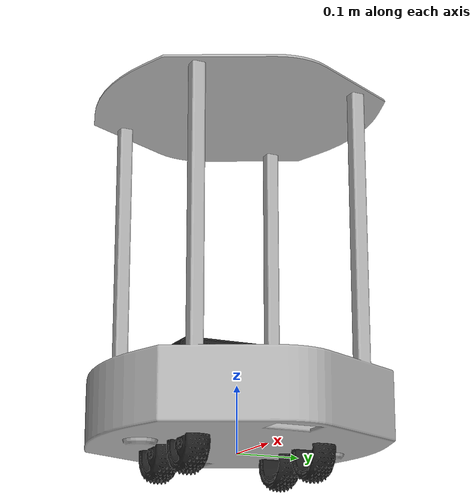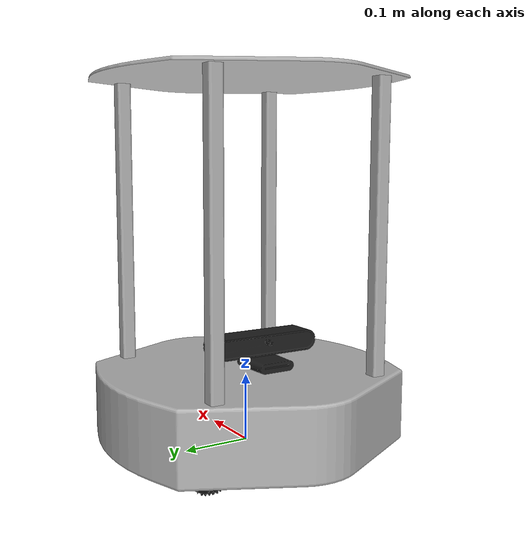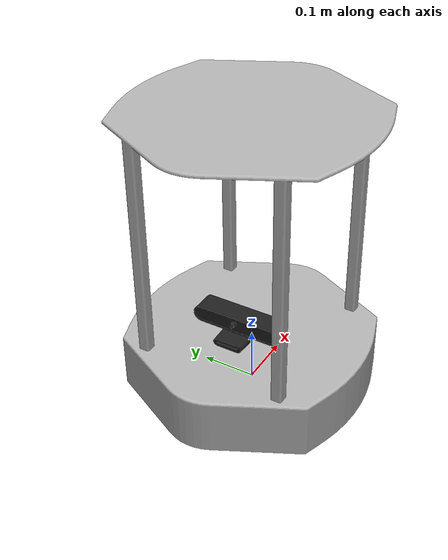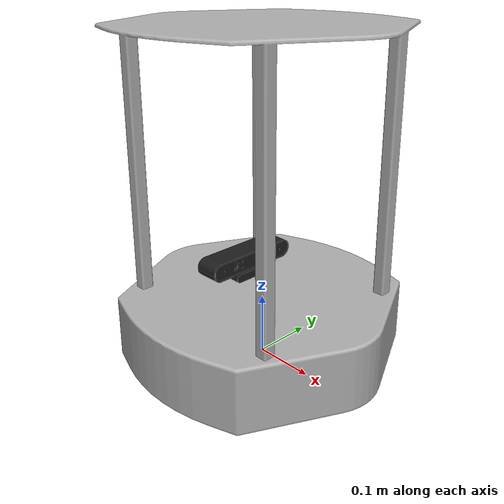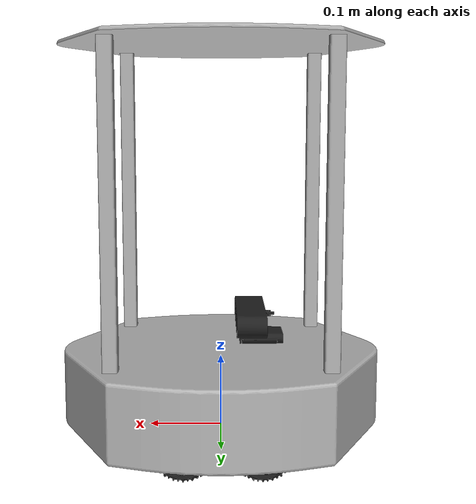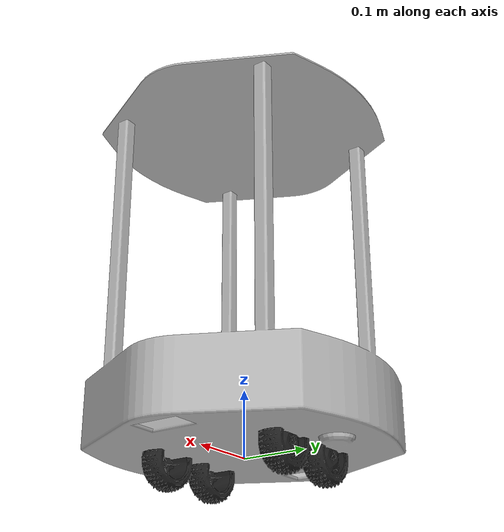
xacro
<?xml version='1.0'?>

<robot name="rosbot"
  xmlns:xacro="http://www.ros.org/wiki/xacro">

  <xacro:arg name="robot_namespace" default=""/>

  <xacro:property name="cameraSize" value="0.05"/>
  <xacro:property name="cameraMass" value="0.1"/>
  <xacro:property name="namespace" value="$(arg robot_namespace)" />

  <xacro:include filename="$(find rosbot_description)/urdf/rosbot.gazebo" />
  <xacro:include filename="$(find rosbot_description)/urdf/materials.xacro" />
  <xacro:include filename="$(find rosbot_description)/urdf/macros.xacro" />

  <link name="dummy"></link>
  <joint name="dummy_joint" type="fixed">
    <parent link="dummy"/>
    <child link="base_link"/>
  </joint>

  <link name="base_link">
    <inertial>
      <origin rpy="0 0 0" xyz="2.360311031961313e-06 3.348856490864264e-10 0.1823972044211784"/>
      <mass value="10.987205181570816"/>
      <inertia ixx="0.580104" ixy="3e-05" ixz="4e-06" iyy="0.584543" iyz="0.0" izz="0.309516"/>
    </inertial>
    <visual>
      <origin rpy="0 0 0" xyz="0 0 0"/>
      <geometry>
        <mesh filename="package://ancro_description/meshes/base_link.stl" scale="0.001 0.001 0.001"/>
      </geometry>
      <material name="silver"/>
    </visual>
    <collision>
      <origin rpy="0 0 0" xyz="0 0 0"/>
      <geometry>
        <mesh filename="package://ancro_description/meshes/base_link.stl" scale="0.001 0.001 0.001"/>
      </geometry>
    </collision>
  </link>

  <link name="front_left_wheel">
    <collision name="collision">
      <origin xyz="0 0 0" rpy="0 0 1.5707"/>
      <geometry>
        <mesh filename="package://rosbot_description/meshes/wheel-v2.stl" scale="0.001 0.001 0.001" />
      </geometry>
      <surface>
        <friction>
          <ode>
            <mu>1</mu>
            <mu2>1</mu2>
          </ode>
        </friction>
      </surface>
    </collision>
    <visual name="front_left_wheel_visual">
      <origin xyz="0 0 0" rpy="0 0 1.5707"/>
      <geometry>
        <mesh filename="package://rosbot_description/meshes/wheel.dae" scale="0.001 0.001 0.001" />
      </geometry>
    </visual>
    <inertial>
      <origin xyz="0 0 0" rpy="0 1.5707 1.5707"/>
      <mass value="0.5"/>
      <inertia
      ixx="0.001" ixy="0.0" ixz="0.0"
      iyy="0.001" iyz="0.0"
      izz="0.001"/>
    </inertial>
  </link>

  <link name="front_right_wheel">
    <collision name="collision">
      <origin xyz="0 0 0" rpy="0 0 -1.5707"/>
      <geometry>
        <mesh filename="package://rosbot_description/meshes/wheel-v2.stl" scale="0.001 0.001 0.001" />
      </geometry>
      <surface>
        <friction>
          <ode>
            <mu>1</mu>
            <mu2>1</mu2>
          </ode>
        </friction>
      </surface>
    </collision>
    <visual name="front_right_wheel_visual">
      <origin xyz="0 0 0" rpy="0 0 -1.5707"/>
      <geometry>
        <mesh filename="package://rosbot_description/meshes/wheel.dae" scale="0.001 0.001 0.001" />
      </geometry>
    </visual>
    <inertial>
      <origin xyz="0 0 0" rpy="0 1.5707 1.5707"/>
      <mass value="0.5"/>
      <inertia
      ixx="0.001" ixy="0.0" ixz="0.0"
      iyy="0.001" iyz="0.0"
      izz="0.001"/>
    </inertial>
  </link>

  <link name="rear_left_wheel">
    <collision name="collision">
      <origin xyz="0 0 0" rpy="0 0 1.5707"/>
      <geometry>
        <mesh filename="package://rosbot_description/meshes/wheel-v2.stl" scale="0.001 0.001 0.001" />
      </geometry>
      <surface>
        <friction>
          <ode>
            <mu>1</mu>
            <mu2>1</mu2>
          </ode>
        </friction>
      </surface>
    </collision>
    <visual name="rear_left_wheel_visual">
      <origin xyz="0 0 0" rpy="0 0 1.5707"/>
      <geometry>
        <mesh filename="package://rosbot_description/meshes/wheel.dae" scale="0.001 0.001 0.001" />
      </geometry>
    </visual>
    <inertial>
      <origin xyz="0 0 0" rpy="0 1.5707 1.5707"/>
      <mass value="0.5"/>
      <inertia
      ixx="0.001" ixy="0.0" ixz="0.0"
      iyy="0.001" iyz="0.0"
      izz="0.001"/>
    </inertial>
  </link>

  <link name="rear_right_wheel">
    <collision name="collision">
      <origin xyz="0 0 0" rpy="0 0 -1.5707"/>
      <geometry>
        <mesh filename="package://rosbot_description/meshes/wheel-v2.stl" scale="0.001 0.001 0.001" />
      </geometry>
      <surface>
        <friction>
          <ode>
            <mu>1</mu>
	    <mu2>1</mu2>
          </ode>
        </friction>
      </surface>
    </collision>
    <visual name="rear_right_wheel_visual">
      <origin xyz="0 0 0" rpy="0 0 -1.5707"/>
      <geometry>
        <mesh filename="package://rosbot_description/meshes/wheel.dae" scale="0.001 0.001 0.001" />
      </geometry>
    </visual>
    <inertial>
      <origin xyz="0 0 0" rpy="0 1.5707 1.5707"/>
      <mass value="0.5"/>
      <inertia
      ixx="0.001" ixy="0.0" ixz="0.0"
      iyy="0.001" iyz="0.0"
      izz="0.001"/>
    </inertial>
  </link>

  <joint type="continuous" name="front_left_wheel_hinge">
    <origin xyz="0.05 0.11 0" rpy="0 0 0"/>
    <child link="front_left_wheel"/>
    <parent link="base_link"/>
    <axis xyz="0 1 0" rpy="0 0 0"/>
    <limit effort="1" velocity="10"/>
    <joint_properties damping="5.0" friction="1.0"/>
  </joint>

  <transmission name="front_left_wheel_trans" type="SimpleTransmission">
    <type>transmission_interface/SimpleTransmission</type>
    <actuator name="front_left_wheel_motor">
      <mechanicalReduction>1</mechanicalReduction>
    </actuator>
    <joint name="front_left_wheel_hinge">
      <hardwareInterface>hardware_interface/EffortJointInterface</hardwareInterface>
    </joint>
  </transmission>

  <joint type="continuous" name="front_right_wheel_hinge">
    <origin xyz="0.05 -0.11 0" rpy="0 0 0"/>
    <child link="front_right_wheel"/>
    <parent link="base_link"/>
    <axis xyz="0 1 0" rpy="0 0 0"/>
    <limit effort="1" velocity="10"/>
    <joint_properties damping="5.0" friction="1.0"/>
  </joint>

  <transmission name="front_right_wheel_trans" type="SimpleTransmission">
    <type>transmission_interface/SimpleTransmission</type>
    <actuator name="front_right_wheel_motor">
      <mechanicalReduction>1</mechanicalReduction>
    </actuator>
    <joint name="front_right_wheel_hinge">
      <hardwareInterface>hardware_interface/EffortJointInterface</hardwareInterface>
    </joint>
  </transmission>

  <joint type="continuous" name="rear_left_wheel_hinge">
    <origin xyz="-0.055 0.11 0" rpy="0 0 0"/>
    <child link="rear_left_wheel"/>
    <parent link="base_link"/>
    <axis xyz="0 1 0" rpy="0 0 0"/>
    <limit effort="1" velocity="10"/>
    <joint_properties damping="5.0" friction="1.0"/>
  </joint>

  <transmission name="rear_left_wheel_trans" type="SimpleTransmission">
    <type>transmission_interface/SimpleTransmission</type>
    <actuator name="rear_left_wheel_motor">
      <mechanicalReduction>1</mechanicalReduction>
    </actuator>
    <joint name="rear_left_wheel_hinge">
      <hardwareInterface>hardware_interface/EffortJointInterface</hardwareInterface>
    </joint>
  </transmission>

  <joint type="continuous" name="rear_right_wheel_hinge">
    <origin xyz="-0.055 -0.11 0" rpy="0 0 0"/>
    <child link="rear_right_wheel"/>
    <parent link="base_link"/>
    <axis xyz="0 1 0" rpy="0 0 0"/>
    <limit effort="1" velocity="10"/>
    <joint_properties damping="5.0" friction="1.0"/>
  </joint>

  <transmission name="rear_right_wheel_trans" type="SimpleTransmission">
    <type>transmission_interface/SimpleTransmission</type>
    <actuator name="rear_right_wheel_motor">
      <mechanicalReduction>1</mechanicalReduction>
    </actuator>
    <joint name="rear_right_wheel_hinge">
      <hardwareInterface>hardware_interface/EffortJointInterface</hardwareInterface>
    </joint>
  </transmission>

  <!-- Orbbec Astra RGBD Camera -->
  <joint name="astra_joint" type="fixed">
    <axis xyz="0 0 0" />
    <origin xyz="-0.03 0 0.18" rpy="0 0 0"/>
    <parent link="base_link"/>
    <child link="camera_link"/>
  </joint>

  <link name="camera_link">
    <collision>
      <origin xyz="0.02 0 0" rpy="0 0 0"/>
      <geometry>0
        <box size="0.001 0.001 0.001"/>
      </geometry>
    </collision>

    <visual>
      <origin xyz="-0.01 0 -0.03" rpy="1.5707 0 1.5707"/>
      <geometry>
        <mesh filename="package://rosbot_description/meshes/astra.dae" scale="0.001 0.001 0.001" />
      </geometry>
    </visual>

    <inertial>
      <mass value="1e-5" />
      <origin xyz="0 0 0" rpy="0 0 0"/>
      <inertia ixx="0" ixy="0" ixz="0" iyy="0" iyz="0" izz="0" />
    </inertial>
  </link>

  <joint name="camera_optical_joint" type="fixed">
    <origin xyz="0 0 0" rpy="${-pi/2} 0 ${-pi/2}"/>
    <parent link="camera_link"/>
    <child link="camera_rgb_frame"/>
  </joint>

  <link name="camera_rgb_frame">
  </link>

  <joint name="camera_depth_joint" type="fixed">
    <origin xyz="0 0 0" rpy="${-pi/2} 0 ${-pi/2}"/>
    <parent link="camera_link"/>
    <child link="camera_depth_frame"/>
  </joint>

  <link name="camera_depth_frame">
  </link>

  <joint name="rplidar_joint" type="fixed">
    <axis xyz="0 1 0" />
    <origin xyz="0.02 0 0.058" rpy="0 0 3.14"/>
    <parent link="base_link"/>
    <child link="laser"/>
  </joint>

  <!-- rplidar Laser -->
  <link name="laser">
    <collision>
      <origin xyz="0 0 0" rpy="1.5707 0 4.71"/>
      <geometry>
        <mesh filename="package://rosbot_description/meshes/rplidar.dae" scale="0.001 0.001 0.001" />
      </geometry>
    </collision>

    <visual>
      <origin xyz="0 0 0" rpy="1.5707 0 4.71"/>
      <geometry>
        <mesh filename="package://rosbot_description/meshes/rplidar.dae" scale="0.001 0.001 0.001" />
      </geometry>
    </visual>

    <inertial>
      <mass value="1e-5" />
      <origin xyz="0 0 0" rpy="1.5707 0 4.71"/>
      <inertia ixx="0" ixy="0" ixz="0" iyy="0" iyz="0" izz="0" />
    </inertial>
  </link>

  <joint name="range_fl_joint" type="fixed">
    <axis xyz="0 1 0" />
    <origin xyz="0.1 0.05 0.01" rpy="0 0 0.13 "/>
    <parent link="base_link"/>
    <child link="range_fl"/>
  </joint>
  <link name="range_fl"></link>

  <joint name="range_fr_joint" type="fixed">
    <axis xyz="0 1 0" />
    <origin xyz="0.1 -0.05 0.01" rpy="0 0 -0.13 "/>
    <parent link="base_link"/>
    <child link="range_fr"/>
  </joint>
  <link name="range_fr"></link>

  <joint name="range_rl_joint" type="fixed">
    <axis xyz="0 1 0" />
    <origin xyz="-0.1 0.05 0.01" rpy="0 0 3.01 "/>
    <parent link="base_link"/>
    <child link="range_rl"/>
  </joint>
  <link name="range_rl"></link>

  <joint name="range_rr_joint" type="fixed">
    <axis xyz="0 1 0" />
    <origin xyz="-0.1 -0.05 0.01" rpy="0 0 3.27 "/>
    <parent link="base_link"/>
    <child link="range_rr"/>
  </joint>
  <link name="range_rr"></link>

</robot>

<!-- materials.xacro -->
<robot name="ancro" xmlns:xacro="http://www.ros.org/wiki/xacro" >

<material name="silver">
  <color rgba="0.700 0.700 0.700 1.000"/>
</material>

</robot>
